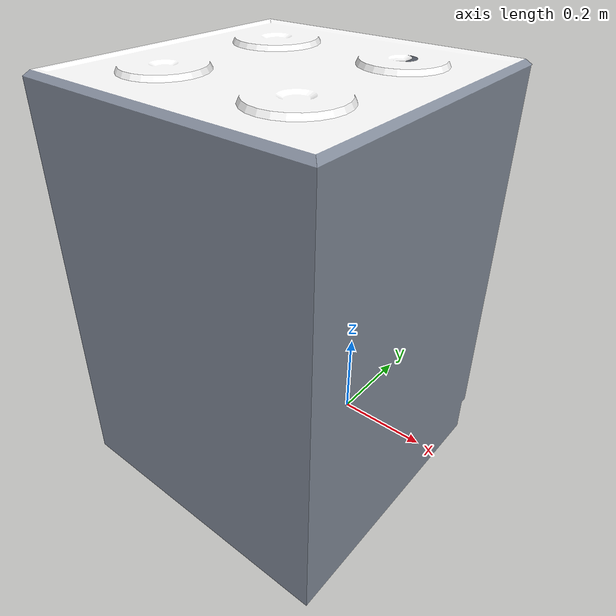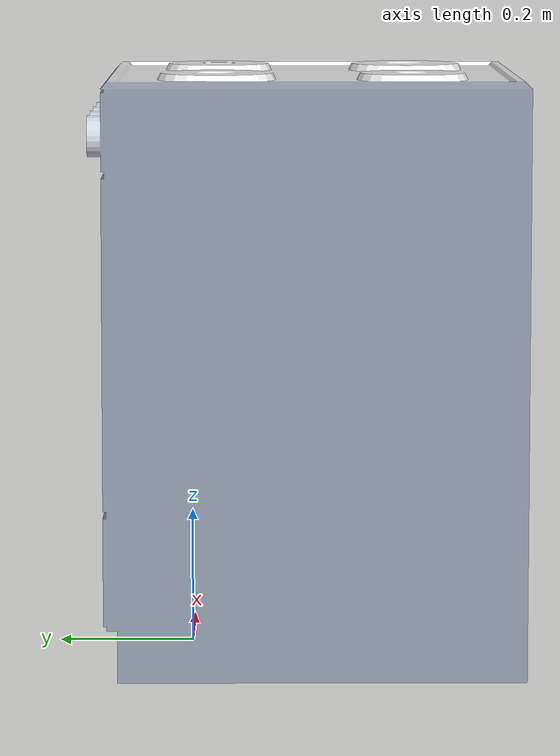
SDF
<?xml version="1.0" ?>
<sdf version="1.5">
  <model name="stove_4burners_1">
    <link name="link">
      <pose>0 0 0 0 0 0</pose>
      <collision name="collision">
        <geometry>
          <mesh>
            <uri>model://stove_4burners_1/meshes/model.dae</uri>
          </mesh>
        </geometry>
      </collision>
      <visual name="visual">
        <geometry>
          <mesh>
            <uri>model://stove_4burners_1/meshes/model.dae</uri>
          </mesh>
        </geometry>
      </visual>
    </link>
    <static>1</static>
  </model>
</sdf>
